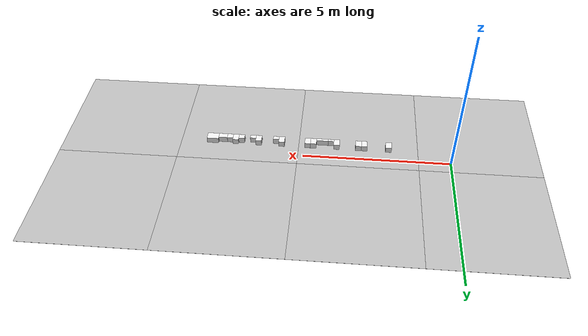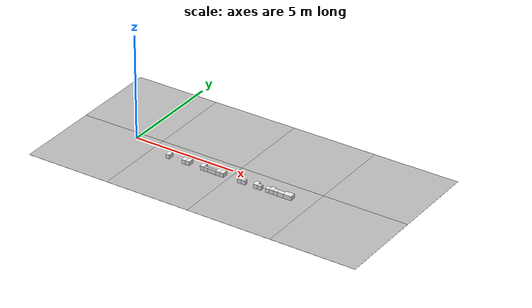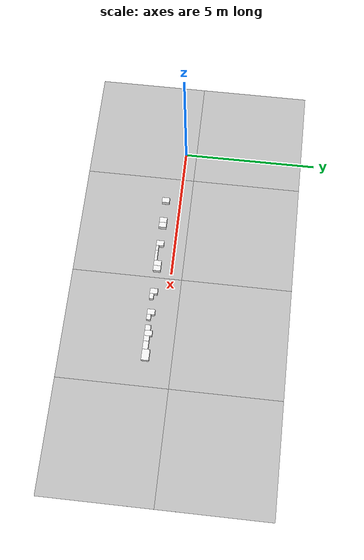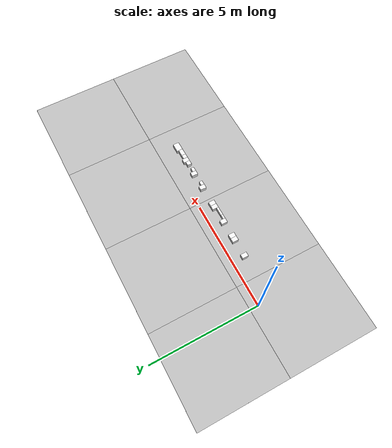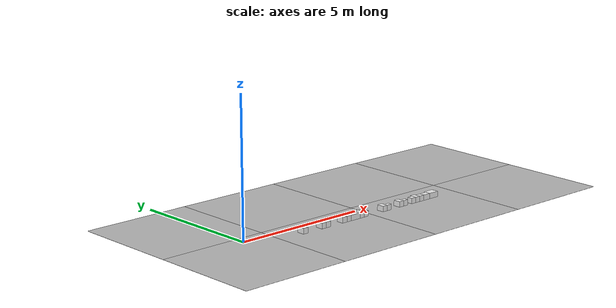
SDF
<sdf version='1.6'><world name='default'>
    <light name='sun_light' type='directional'>
      <pose frame=''>0 0 10 0 -0 0</pose>
      <diffuse>0.5 0.5 0.5 1</diffuse>
      <specular>0.1 0.1 0.1 1</specular>
      <direction>0.1 0.1 -0.9</direction>
      <attenuation>
        <range>20</range>
        <constant>0.5</constant>
        <linear>0.01</linear>
        <quadratic>0.001</quadratic>
      </attenuation>
      <cast_shadows>1</cast_shadows>
    </light>

    <model name='Tile/0-0'>
      <static>1</static>
      <link name='link'>
        <collision name='collision'>
          <geometry>
            <plane>
              <normal>0 0 1</normal>
              <size>4.096 4.096</size>
            </plane>
          </geometry>
          <surface>
            <friction>
              <ode>
                <mu>100</mu>
                <mu2>50</mu2>
              </ode>
              <torsional>
                <ode/>
              </torsional>
            </friction>
            <contact>
              <ode/>
            </contact>
            <bounce/>
          </surface>
          <max_contacts>10</max_contacts>
        </collision>
        <visual name='visual'>
          <cast_shadows>0</cast_shadows>
          <geometry>
            <plane>
              <normal>0 0 1</normal>
              <size>4.096 4.096</size>
            </plane>
          </geometry>
          <material>
            <script>
              <uri>file://materials/scripts</uri>
              <uri>file://materials/textures</uri>
              <name>Tile/aa44efc093d15b0d016b671cb8dad8b9b5925cd42bc6b331ef31decf4ba6863e</name>
            </script>
          </material>
        </visual>
        <self_collide>0</self_collide>
        <enable_wind>0</enable_wind>
        <kinematic>0</kinematic>
      </link>
      <pose frame=''>-0.952 -1.6520000000000001 0 0 -0 0</pose>
    </model>

    <model name='Tile/0-1'>
      <static>1</static>
      <link name='link'>
        <collision name='collision'>
          <geometry>
            <plane>
              <normal>0 0 1</normal>
              <size>4.096 4.096</size>
            </plane>
          </geometry>
          <surface>
            <friction>
              <ode>
                <mu>100</mu>
                <mu2>50</mu2>
              </ode>
              <torsional>
                <ode/>
              </torsional>
            </friction>
            <contact>
              <ode/>
            </contact>
            <bounce/>
          </surface>
          <max_contacts>10</max_contacts>
        </collision>
        <visual name='visual'>
          <cast_shadows>0</cast_shadows>
          <geometry>
            <plane>
              <normal>0 0 1</normal>
              <size>4.096 4.096</size>
            </plane>
          </geometry>
          <material>
            <script>
              <uri>file://materials/scripts</uri>
              <uri>file://materials/textures</uri>
              <name>Tile/6681b896b1587d54cb69aadeb5fb7247b4d6d500490292053e67105ac88ca889</name>
            </script>
          </material>
        </visual>
        <self_collide>0</self_collide>
        <enable_wind>0</enable_wind>
        <kinematic>0</kinematic>
      </link>
      <pose frame=''>-0.952 2.444 0 0 -0 0</pose>
    </model>

    <model name='Tile/1-0'>
      <static>1</static>
      <link name='link'>
        <collision name='collision'>
          <geometry>
            <plane>
              <normal>0 0 1</normal>
              <size>4.096 4.096</size>
            </plane>
          </geometry>
          <surface>
            <friction>
              <ode>
                <mu>100</mu>
                <mu2>50</mu2>
              </ode>
              <torsional>
                <ode/>
              </torsional>
            </friction>
            <contact>
              <ode/>
            </contact>
            <bounce/>
          </surface>
          <max_contacts>10</max_contacts>
        </collision>
        <visual name='visual'>
          <cast_shadows>0</cast_shadows>
          <geometry>
            <plane>
              <normal>0 0 1</normal>
              <size>4.096 4.096</size>
            </plane>
          </geometry>
          <material>
            <script>
              <uri>file://materials/scripts</uri>
              <uri>file://materials/textures</uri>
              <name>Tile/e24981eba43847fd3b579cf9b4c5cc2be6154ffa9853f29fb0536f3620ffef41</name>
            </script>
          </material>
        </visual>
        <self_collide>0</self_collide>
        <enable_wind>0</enable_wind>
        <kinematic>0</kinematic>
      </link>
      <pose frame=''>3.144 -1.6520000000000001 0 0 -0 0</pose>
    </model>

    <model name='Tile/1-1'>
      <static>1</static>
      <link name='link'>
        <collision name='collision'>
          <geometry>
            <plane>
              <normal>0 0 1</normal>
              <size>4.096 4.096</size>
            </plane>
          </geometry>
          <surface>
            <friction>
              <ode>
                <mu>100</mu>
                <mu2>50</mu2>
              </ode>
              <torsional>
                <ode/>
              </torsional>
            </friction>
            <contact>
              <ode/>
            </contact>
            <bounce/>
          </surface>
          <max_contacts>10</max_contacts>
        </collision>
        <visual name='visual'>
          <cast_shadows>0</cast_shadows>
          <geometry>
            <plane>
              <normal>0 0 1</normal>
              <size>4.096 4.096</size>
            </plane>
          </geometry>
          <material>
            <script>
              <uri>file://materials/scripts</uri>
              <uri>file://materials/textures</uri>
              <name>Tile/13957a6de1f2afce18d7f1f64dacc2f21295e26ccf498256b0e1a51002cd5706</name>
            </script>
          </material>
        </visual>
        <self_collide>0</self_collide>
        <enable_wind>0</enable_wind>
        <kinematic>0</kinematic>
      </link>
      <pose frame=''>3.144 2.444 0 0 -0 0</pose>
    </model>

    <model name='Tile/2-0'>
      <static>1</static>
      <link name='link'>
        <collision name='collision'>
          <geometry>
            <plane>
              <normal>0 0 1</normal>
              <size>4.096 4.096</size>
            </plane>
          </geometry>
          <surface>
            <friction>
              <ode>
                <mu>100</mu>
                <mu2>50</mu2>
              </ode>
              <torsional>
                <ode/>
              </torsional>
            </friction>
            <contact>
              <ode/>
            </contact>
            <bounce/>
          </surface>
          <max_contacts>10</max_contacts>
        </collision>
        <visual name='visual'>
          <cast_shadows>0</cast_shadows>
          <geometry>
            <plane>
              <normal>0 0 1</normal>
              <size>4.096 4.096</size>
            </plane>
          </geometry>
          <material>
            <script>
              <uri>file://materials/scripts</uri>
              <uri>file://materials/textures</uri>
              <name>Tile/220bdb6f872ce0da881587a35fb34862bf27f5aeb75bbbcceb58bf719dea1067</name>
            </script>
          </material>
        </visual>
        <self_collide>0</self_collide>
        <enable_wind>0</enable_wind>
        <kinematic>0</kinematic>
      </link>
      <pose frame=''>7.24 -1.6520000000000001 0 0 -0 0</pose>
    </model>

    <model name='Tile/2-1'>
      <static>1</static>
      <link name='link'>
        <collision name='collision'>
          <geometry>
            <plane>
              <normal>0 0 1</normal>
              <size>4.096 4.096</size>
            </plane>
          </geometry>
          <surface>
            <friction>
              <ode>
                <mu>100</mu>
                <mu2>50</mu2>
              </ode>
              <torsional>
                <ode/>
              </torsional>
            </friction>
            <contact>
              <ode/>
            </contact>
            <bounce/>
          </surface>
          <max_contacts>10</max_contacts>
        </collision>
        <visual name='visual'>
          <cast_shadows>0</cast_shadows>
          <geometry>
            <plane>
              <normal>0 0 1</normal>
              <size>4.096 4.096</size>
            </plane>
          </geometry>
          <material>
            <script>
              <uri>file://materials/scripts</uri>
              <uri>file://materials/textures</uri>
              <name>Tile/13957a6de1f2afce18d7f1f64dacc2f21295e26ccf498256b0e1a51002cd5706</name>
            </script>
          </material>
        </visual>
        <self_collide>0</self_collide>
        <enable_wind>0</enable_wind>
        <kinematic>0</kinematic>
      </link>
      <pose frame=''>7.24 2.444 0 0 -0 0</pose>
    </model>

    <model name='Tile/3-0'>
      <static>1</static>
      <link name='link'>
        <collision name='collision'>
          <geometry>
            <plane>
              <normal>0 0 1</normal>
              <size>4.096 4.096</size>
            </plane>
          </geometry>
          <surface>
            <friction>
              <ode>
                <mu>100</mu>
                <mu2>50</mu2>
              </ode>
              <torsional>
                <ode/>
              </torsional>
            </friction>
            <contact>
              <ode/>
            </contact>
            <bounce/>
          </surface>
          <max_contacts>10</max_contacts>
        </collision>
        <visual name='visual'>
          <cast_shadows>0</cast_shadows>
          <geometry>
            <plane>
              <normal>0 0 1</normal>
              <size>4.096 4.096</size>
            </plane>
          </geometry>
          <material>
            <script>
              <uri>file://materials/scripts</uri>
              <uri>file://materials/textures</uri>
              <name>Tile/24cff4cfd29088829f06b91573f2d527903faa6ef89d07519b5e2219bf9e69df</name>
            </script>
          </material>
        </visual>
        <self_collide>0</self_collide>
        <enable_wind>0</enable_wind>
        <kinematic>0</kinematic>
      </link>
      <pose frame=''>11.336 -1.6520000000000001 0 0 -0 0</pose>
    </model>

    <model name='Tile/3-1'>
      <static>1</static>
      <link name='link'>
        <collision name='collision'>
          <geometry>
            <plane>
              <normal>0 0 1</normal>
              <size>4.096 4.096</size>
            </plane>
          </geometry>
          <surface>
            <friction>
              <ode>
                <mu>100</mu>
                <mu2>50</mu2>
              </ode>
              <torsional>
                <ode/>
              </torsional>
            </friction>
            <contact>
              <ode/>
            </contact>
            <bounce/>
          </surface>
          <max_contacts>10</max_contacts>
        </collision>
        <visual name='visual'>
          <cast_shadows>0</cast_shadows>
          <geometry>
            <plane>
              <normal>0 0 1</normal>
              <size>4.096 4.096</size>
            </plane>
          </geometry>
          <material>
            <script>
              <uri>file://materials/scripts</uri>
              <uri>file://materials/textures</uri>
              <name>Tile/f5a4d266d57c88a2e237d7d103c13ff89585a31ae4c0025a395214e999f068f7</name>
            </script>
          </material>
        </visual>
        <self_collide>0</self_collide>
        <enable_wind>0</enable_wind>
        <kinematic>0</kinematic>
      </link>
      <pose frame=''>11.336 2.444 0 0 -0 0</pose>
    </model>

    <model name='Obstacle/-5/0'>
      <pose frame=''>2.1 -0.5599999999999999 0.1 0 0 -0.0</pose>
      <link name='link'>
        <inertial>
          <mass>10</mass>
          <inertia>
            <ixx>0.166667</ixx>
            <ixy>0</ixy>
            <ixz>0</ixz>
            <iyy>0.166667</iyy>
            <iyz>0</iyz>
            <izz>0.166667</izz>
          </inertia>
        </inertial>
        <collision name='collision'>
          <geometry>
            <box>
              <size>0.2 0.28 0.2</size>
            </box>
          </geometry>
          <max_contacts>10</max_contacts>
          <surface>
            <contact>
              <ode/>
            </contact>
            <bounce/>
            <friction>
              <torsional>
                <ode/>
              </torsional>
              <ode/>
            </friction>
          </surface>
        </collision>
        <visual name='visual'>
          <geometry>
            <box>
              <size>0.2 0.28 0.2</size>
            </box>
          </geometry>
          <material>
            <script>
              <name>Gazebo/White</name>
              <uri>file://media/materials/scripts/gazebo.material</uri>
            </script>
          </material>
        </visual>
        <self_collide>0</self_collide>
        <enable_wind>0</enable_wind>
        <kinematic>0</kinematic>
      </link>
    </model>

    <model name='Obstacle/-12/0'>
      <pose frame=''>2.93 -0.5599999999999999 0.1 0 0 -0.0</pose>
      <link name='link'>
        <inertial>
          <mass>10</mass>
          <inertia>
            <ixx>0.166667</ixx>
            <ixy>0</ixy>
            <ixz>0</ixz>
            <iyy>0.166667</iyy>
            <iyz>0</iyz>
            <izz>0.166667</izz>
          </inertia>
        </inertial>
        <collision name='collision'>
          <geometry>
            <box>
              <size>0.2 0.28 0.2</size>
            </box>
          </geometry>
          <max_contacts>10</max_contacts>
          <surface>
            <contact>
              <ode/>
            </contact>
            <bounce/>
            <friction>
              <torsional>
                <ode/>
              </torsional>
              <ode/>
            </friction>
          </surface>
        </collision>
        <visual name='visual'>
          <geometry>
            <box>
              <size>0.2 0.28 0.2</size>
            </box>
          </geometry>
          <material>
            <script>
              <name>Gazebo/White</name>
              <uri>file://media/materials/scripts/gazebo.material</uri>
            </script>
          </material>
        </visual>
        <self_collide>0</self_collide>
        <enable_wind>0</enable_wind>
        <kinematic>0</kinematic>
      </link>
    </model>

    <model name='Obstacle/-16/0'>
      <pose frame=''>3.1300000000000003 -0.5599999999999999 0.1 0 0 -0.0</pose>
      <link name='link'>
        <inertial>
          <mass>10</mass>
          <inertia>
            <ixx>0.166667</ixx>
            <ixy>0</ixy>
            <ixz>0</ixz>
            <iyy>0.166667</iyy>
            <iyz>0</iyz>
            <izz>0.166667</izz>
          </inertia>
        </inertial>
        <collision name='collision'>
          <geometry>
            <box>
              <size>0.2 0.28 0.2</size>
            </box>
          </geometry>
          <max_contacts>10</max_contacts>
          <surface>
            <contact>
              <ode/>
            </contact>
            <bounce/>
            <friction>
              <torsional>
                <ode/>
              </torsional>
              <ode/>
            </friction>
          </surface>
        </collision>
        <visual name='visual'>
          <geometry>
            <box>
              <size>0.2 0.28 0.2</size>
            </box>
          </geometry>
          <material>
            <script>
              <name>Gazebo/White</name>
              <uri>file://media/materials/scripts/gazebo.material</uri>
            </script>
          </material>
        </visual>
        <self_collide>0</self_collide>
        <enable_wind>0</enable_wind>
        <kinematic>0</kinematic>
      </link>
    </model>

    <model name='Obstacle/-23/0'>
      <pose frame=''>3.8800000000000003 -0.5599999999999999 0.1 0 0 -0.0</pose>
      <link name='link'>
        <inertial>
          <mass>10</mass>
          <inertia>
            <ixx>0.166667</ixx>
            <ixy>0</ixy>
            <ixz>0</ixz>
            <iyy>0.166667</iyy>
            <iyz>0</iyz>
            <izz>0.166667</izz>
          </inertia>
        </inertial>
        <collision name='collision'>
          <geometry>
            <box>
              <size>0.2 0.28 0.2</size>
            </box>
          </geometry>
          <max_contacts>10</max_contacts>
          <surface>
            <contact>
              <ode/>
            </contact>
            <bounce/>
            <friction>
              <torsional>
                <ode/>
              </torsional>
              <ode/>
            </friction>
          </surface>
        </collision>
        <visual name='visual'>
          <geometry>
            <box>
              <size>0.2 0.28 0.2</size>
            </box>
          </geometry>
          <material>
            <script>
              <name>Gazebo/White</name>
              <uri>file://media/materials/scripts/gazebo.material</uri>
            </script>
          </material>
        </visual>
        <self_collide>0</self_collide>
        <enable_wind>0</enable_wind>
        <kinematic>0</kinematic>
      </link>
    </model>

    <model name='Obstacle/-27/0'>
      <pose frame=''>4.08 -0.6499999999999999 0.1 0 0 -0.0</pose>
      <link name='link'>
        <inertial>
          <mass>10</mass>
          <inertia>
            <ixx>0.166667</ixx>
            <ixy>0</ixy>
            <ixz>0</ixz>
            <iyy>0.166667</iyy>
            <iyz>0</iyz>
            <izz>0.166667</izz>
          </inertia>
        </inertial>
        <collision name='collision'>
          <geometry>
            <box>
              <size>0.2 0.1 0.2</size>
            </box>
          </geometry>
          <max_contacts>10</max_contacts>
          <surface>
            <contact>
              <ode/>
            </contact>
            <bounce/>
            <friction>
              <torsional>
                <ode/>
              </torsional>
              <ode/>
            </friction>
          </surface>
        </collision>
        <visual name='visual'>
          <geometry>
            <box>
              <size>0.2 0.1 0.2</size>
            </box>
          </geometry>
          <material>
            <script>
              <name>Gazebo/White</name>
              <uri>file://media/materials/scripts/gazebo.material</uri>
            </script>
          </material>
        </visual>
        <self_collide>0</self_collide>
        <enable_wind>0</enable_wind>
        <kinematic>0</kinematic>
      </link>
    </model>

    <model name='Obstacle/-31/0'>
      <pose frame=''>4.380000000000001 -0.6499999999999999 0.1 0 0 -0.0</pose>
      <link name='link'>
        <inertial>
          <mass>10</mass>
          <inertia>
            <ixx>0.166667</ixx>
            <ixy>0</ixy>
            <ixz>0</ixz>
            <iyy>0.166667</iyy>
            <iyz>0</iyz>
            <izz>0.166667</izz>
          </inertia>
        </inertial>
        <collision name='collision'>
          <geometry>
            <box>
              <size>0.4 0.1 0.2</size>
            </box>
          </geometry>
          <max_contacts>10</max_contacts>
          <surface>
            <contact>
              <ode/>
            </contact>
            <bounce/>
            <friction>
              <torsional>
                <ode/>
              </torsional>
              <ode/>
            </friction>
          </surface>
        </collision>
        <visual name='visual'>
          <geometry>
            <box>
              <size>0.4 0.1 0.2</size>
            </box>
          </geometry>
          <material>
            <script>
              <name>Gazebo/White</name>
              <uri>file://media/materials/scripts/gazebo.material</uri>
            </script>
          </material>
        </visual>
        <self_collide>0</self_collide>
        <enable_wind>0</enable_wind>
        <kinematic>0</kinematic>
      </link>
    </model>

    <model name='Obstacle/-35/0'>
      <pose frame=''>4.680000000000001 -0.5599999999999999 0.1 0 0 -0.0</pose>
      <link name='link'>
        <inertial>
          <mass>10</mass>
          <inertia>
            <ixx>0.166667</ixx>
            <ixy>0</ixy>
            <ixz>0</ixz>
            <iyy>0.166667</iyy>
            <iyz>0</iyz>
            <izz>0.166667</izz>
          </inertia>
        </inertial>
        <collision name='collision'>
          <geometry>
            <box>
              <size>0.2 0.28 0.2</size>
            </box>
          </geometry>
          <max_contacts>10</max_contacts>
          <surface>
            <contact>
              <ode/>
            </contact>
            <bounce/>
            <friction>
              <torsional>
                <ode/>
              </torsional>
              <ode/>
            </friction>
          </surface>
        </collision>
        <visual name='visual'>
          <geometry>
            <box>
              <size>0.2 0.28 0.2</size>
            </box>
          </geometry>
          <material>
            <script>
              <name>Gazebo/White</name>
              <uri>file://media/materials/scripts/gazebo.material</uri>
            </script>
          </material>
        </visual>
        <self_collide>0</self_collide>
        <enable_wind>0</enable_wind>
        <kinematic>0</kinematic>
      </link>
    </model>

    <model name='Obstacle/-39/0'>
      <pose frame=''>4.880000000000001 -0.5599999999999999 0.1 0 0 -0.0</pose>
      <link name='link'>
        <inertial>
          <mass>10</mass>
          <inertia>
            <ixx>0.166667</ixx>
            <ixy>0</ixy>
            <ixz>0</ixz>
            <iyy>0.166667</iyy>
            <iyz>0</iyz>
            <izz>0.166667</izz>
          </inertia>
        </inertial>
        <collision name='collision'>
          <geometry>
            <box>
              <size>0.2 0.28 0.2</size>
            </box>
          </geometry>
          <max_contacts>10</max_contacts>
          <surface>
            <contact>
              <ode/>
            </contact>
            <bounce/>
            <friction>
              <torsional>
                <ode/>
              </torsional>
              <ode/>
            </friction>
          </surface>
        </collision>
        <visual name='visual'>
          <geometry>
            <box>
              <size>0.2 0.28 0.2</size>
            </box>
          </geometry>
          <material>
            <script>
              <name>Gazebo/White</name>
              <uri>file://media/materials/scripts/gazebo.material</uri>
            </script>
          </material>
        </visual>
        <self_collide>0</self_collide>
        <enable_wind>0</enable_wind>
        <kinematic>0</kinematic>
      </link>
    </model>

    <model name='Obstacle/-46/0'>
      <pose frame=''>5.780000000000001 -0.5599999999999999 0.1 0 0 -0.0</pose>
      <link name='link'>
        <inertial>
          <mass>10</mass>
          <inertia>
            <ixx>0.166667</ixx>
            <ixy>0</ixy>
            <ixz>0</ixz>
            <iyy>0.166667</iyy>
            <iyz>0</iyz>
            <izz>0.166667</izz>
          </inertia>
        </inertial>
        <collision name='collision'>
          <geometry>
            <box>
              <size>0.2 0.28 0.2</size>
            </box>
          </geometry>
          <max_contacts>10</max_contacts>
          <surface>
            <contact>
              <ode/>
            </contact>
            <bounce/>
            <friction>
              <torsional>
                <ode/>
              </torsional>
              <ode/>
            </friction>
          </surface>
        </collision>
        <visual name='visual'>
          <geometry>
            <box>
              <size>0.2 0.28 0.2</size>
            </box>
          </geometry>
          <material>
            <script>
              <name>Gazebo/White</name>
              <uri>file://media/materials/scripts/gazebo.material</uri>
            </script>
          </material>
        </visual>
        <self_collide>0</self_collide>
        <enable_wind>0</enable_wind>
        <kinematic>0</kinematic>
      </link>
    </model>

    <model name='Obstacle/-50/0'>
      <pose frame=''>5.980000000000001 -0.625 0.1 0 0 -0.0</pose>
      <link name='link'>
        <inertial>
          <mass>10</mass>
          <inertia>
            <ixx>0.166667</ixx>
            <ixy>0</ixy>
            <ixz>0</ixz>
            <iyy>0.166667</iyy>
            <iyz>0</iyz>
            <izz>0.166667</izz>
          </inertia>
        </inertial>
        <collision name='collision'>
          <geometry>
            <box>
              <size>0.2 0.15 0.2</size>
            </box>
          </geometry>
          <max_contacts>10</max_contacts>
          <surface>
            <contact>
              <ode/>
            </contact>
            <bounce/>
            <friction>
              <torsional>
                <ode/>
              </torsional>
              <ode/>
            </friction>
          </surface>
        </collision>
        <visual name='visual'>
          <geometry>
            <box>
              <size>0.2 0.15 0.2</size>
            </box>
          </geometry>
          <material>
            <script>
              <name>Gazebo/White</name>
              <uri>file://media/materials/scripts/gazebo.material</uri>
            </script>
          </material>
        </visual>
        <self_collide>0</self_collide>
        <enable_wind>0</enable_wind>
        <kinematic>0</kinematic>
      </link>
    </model>

    <model name='Obstacle/-57/0'>
      <pose frame=''>6.580000000000002 -0.5599999999999999 0.1 0 0 -0.0</pose>
      <link name='link'>
        <inertial>
          <mass>10</mass>
          <inertia>
            <ixx>0.166667</ixx>
            <ixy>0</ixy>
            <ixz>0</ixz>
            <iyy>0.166667</iyy>
            <iyz>0</iyz>
            <izz>0.166667</izz>
          </inertia>
        </inertial>
        <collision name='collision'>
          <geometry>
            <box>
              <size>0.2 0.28 0.2</size>
            </box>
          </geometry>
          <max_contacts>10</max_contacts>
          <surface>
            <contact>
              <ode/>
            </contact>
            <bounce/>
            <friction>
              <torsional>
                <ode/>
              </torsional>
              <ode/>
            </friction>
          </surface>
        </collision>
        <visual name='visual'>
          <geometry>
            <box>
              <size>0.2 0.28 0.2</size>
            </box>
          </geometry>
          <material>
            <script>
              <name>Gazebo/White</name>
              <uri>file://media/materials/scripts/gazebo.material</uri>
            </script>
          </material>
        </visual>
        <self_collide>0</self_collide>
        <enable_wind>0</enable_wind>
        <kinematic>0</kinematic>
      </link>
    </model>

    <model name='Obstacle/-61/0'>
      <pose frame=''>6.780000000000002 -0.625 0.1 0 0 -0.0</pose>
      <link name='link'>
        <inertial>
          <mass>10</mass>
          <inertia>
            <ixx>0.166667</ixx>
            <ixy>0</ixy>
            <ixz>0</ixz>
            <iyy>0.166667</iyy>
            <iyz>0</iyz>
            <izz>0.166667</izz>
          </inertia>
        </inertial>
        <collision name='collision'>
          <geometry>
            <box>
              <size>0.2 0.15 0.2</size>
            </box>
          </geometry>
          <max_contacts>10</max_contacts>
          <surface>
            <contact>
              <ode/>
            </contact>
            <bounce/>
            <friction>
              <torsional>
                <ode/>
              </torsional>
              <ode/>
            </friction>
          </surface>
        </collision>
        <visual name='visual'>
          <geometry>
            <box>
              <size>0.2 0.15 0.2</size>
            </box>
          </geometry>
          <material>
            <script>
              <name>Gazebo/White</name>
              <uri>file://media/materials/scripts/gazebo.material</uri>
            </script>
          </material>
        </visual>
        <self_collide>0</self_collide>
        <enable_wind>0</enable_wind>
        <kinematic>0</kinematic>
      </link>
    </model>

    <model name='Obstacle/-68/0'>
      <pose frame=''>7.180000000000002 -0.6 0.1 0 0 -0.0</pose>
      <link name='link'>
        <inertial>
          <mass>10</mass>
          <inertia>
            <ixx>0.166667</ixx>
            <ixy>0</ixy>
            <ixz>0</ixz>
            <iyy>0.166667</iyy>
            <iyz>0</iyz>
            <izz>0.166667</izz>
          </inertia>
        </inertial>
        <collision name='collision'>
          <geometry>
            <box>
              <size>0.2 0.2 0.2</size>
            </box>
          </geometry>
          <max_contacts>10</max_contacts>
          <surface>
            <contact>
              <ode/>
            </contact>
            <bounce/>
            <friction>
              <torsional>
                <ode/>
              </torsional>
              <ode/>
            </friction>
          </surface>
        </collision>
        <visual name='visual'>
          <geometry>
            <box>
              <size>0.2 0.2 0.2</size>
            </box>
          </geometry>
          <material>
            <script>
              <name>Gazebo/White</name>
              <uri>file://media/materials/scripts/gazebo.material</uri>
            </script>
          </material>
        </visual>
        <self_collide>0</self_collide>
        <enable_wind>0</enable_wind>
        <kinematic>0</kinematic>
      </link>
    </model>

    <model name='Obstacle/-72/0'>
      <pose frame=''>7.380000000000003 -0.5599999999999999 0.1 0 0 -0.0</pose>
      <link name='link'>
        <inertial>
          <mass>10</mass>
          <inertia>
            <ixx>0.166667</ixx>
            <ixy>0</ixy>
            <ixz>0</ixz>
            <iyy>0.166667</iyy>
            <iyz>0</iyz>
            <izz>0.166667</izz>
          </inertia>
        </inertial>
        <collision name='collision'>
          <geometry>
            <box>
              <size>0.2 0.28 0.2</size>
            </box>
          </geometry>
          <max_contacts>10</max_contacts>
          <surface>
            <contact>
              <ode/>
            </contact>
            <bounce/>
            <friction>
              <torsional>
                <ode/>
              </torsional>
              <ode/>
            </friction>
          </surface>
        </collision>
        <visual name='visual'>
          <geometry>
            <box>
              <size>0.2 0.28 0.2</size>
            </box>
          </geometry>
          <material>
            <script>
              <name>Gazebo/White</name>
              <uri>file://media/materials/scripts/gazebo.material</uri>
            </script>
          </material>
        </visual>
        <self_collide>0</self_collide>
        <enable_wind>0</enable_wind>
        <kinematic>0</kinematic>
      </link>
    </model>

    <model name='Obstacle/-76/0'>
      <pose frame=''>7.580000000000003 -0.6 0.1 0 0 -0.0</pose>
      <link name='link'>
        <inertial>
          <mass>10</mass>
          <inertia>
            <ixx>0.166667</ixx>
            <ixy>0</ixy>
            <ixz>0</ixz>
            <iyy>0.166667</iyy>
            <iyz>0</iyz>
            <izz>0.166667</izz>
          </inertia>
        </inertial>
        <collision name='collision'>
          <geometry>
            <box>
              <size>0.2 0.2 0.2</size>
            </box>
          </geometry>
          <max_contacts>10</max_contacts>
          <surface>
            <contact>
              <ode/>
            </contact>
            <bounce/>
            <friction>
              <torsional>
                <ode/>
              </torsional>
              <ode/>
            </friction>
          </surface>
        </collision>
        <visual name='visual'>
          <geometry>
            <box>
              <size>0.2 0.2 0.2</size>
            </box>
          </geometry>
          <material>
            <script>
              <name>Gazebo/White</name>
              <uri>file://media/materials/scripts/gazebo.material</uri>
            </script>
          </material>
        </visual>
        <self_collide>0</self_collide>
        <enable_wind>0</enable_wind>
        <kinematic>0</kinematic>
      </link>
    </model>

    <model name='Obstacle/-80/0'>
      <pose frame=''>7.830000000000004 -0.6 0.1 0 0 -0.0</pose>
      <link name='link'>
        <inertial>
          <mass>10</mass>
          <inertia>
            <ixx>0.166667</ixx>
            <ixy>0</ixy>
            <ixz>0</ixz>
            <iyy>0.166667</iyy>
            <iyz>0</iyz>
            <izz>0.166667</izz>
          </inertia>
        </inertial>
        <collision name='collision'>
          <geometry>
            <box>
              <size>0.3 0.2 0.2</size>
            </box>
          </geometry>
          <max_contacts>10</max_contacts>
          <surface>
            <contact>
              <ode/>
            </contact>
            <bounce/>
            <friction>
              <torsional>
                <ode/>
              </torsional>
              <ode/>
            </friction>
          </surface>
        </collision>
        <visual name='visual'>
          <geometry>
            <box>
              <size>0.3 0.2 0.2</size>
            </box>
          </geometry>
          <material>
            <script>
              <name>Gazebo/White</name>
              <uri>file://media/materials/scripts/gazebo.material</uri>
            </script>
          </material>
        </visual>
        <self_collide>0</self_collide>
        <enable_wind>0</enable_wind>
        <kinematic>0</kinematic>
      </link>
    </model>

    <model name='Obstacle/-84/0'>
      <pose frame=''>8.180000000000003 -0.5599999999999999 0.1 0 0 -0.0</pose>
      <link name='link'>
        <inertial>
          <mass>10</mass>
          <inertia>
            <ixx>0.166667</ixx>
            <ixy>0</ixy>
            <ixz>0</ixz>
            <iyy>0.166667</iyy>
            <iyz>0</iyz>
            <izz>0.166667</izz>
          </inertia>
        </inertial>
        <collision name='collision'>
          <geometry>
            <box>
              <size>0.4 0.28 0.2</size>
            </box>
          </geometry>
          <max_contacts>10</max_contacts>
          <surface>
            <contact>
              <ode/>
            </contact>
            <bounce/>
            <friction>
              <torsional>
                <ode/>
              </torsional>
              <ode/>
            </friction>
          </surface>
        </collision>
        <visual name='visual'>
          <geometry>
            <box>
              <size>0.4 0.28 0.2</size>
            </box>
          </geometry>
          <material>
            <script>
              <name>Gazebo/White</name>
              <uri>file://media/materials/scripts/gazebo.material</uri>
            </script>
          </material>
        </visual>
        <self_collide>0</self_collide>
        <enable_wind>0</enable_wind>
        <kinematic>0</kinematic>
      </link>
    </model>
    </world></sdf>
